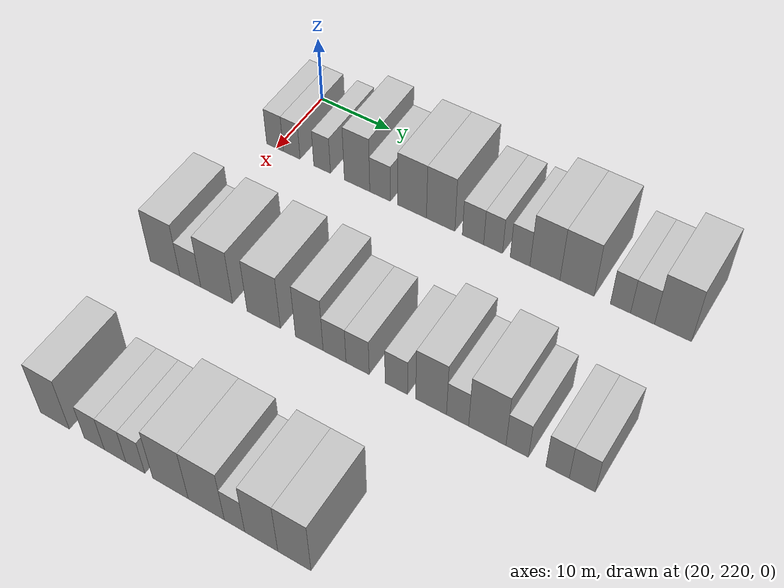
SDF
<sdf version="1.6">
 <world name="default">
  <model name="building_149">
   <static>1</static>
   <pose>25.0000 219.7441 0 0.000000 0.000000 0.000000</pose>
   <link name="link">
    <pose>0 0 3.00 0 0 0</pose>
    <collision name="collision"><geometry><box><size>10.0000 2.4757 6.0000</size></box></geometry></collision>
    <visual name="visual">
     <cast_shadows>0</cast_shadows>
     <geometry><box><size>10.0000 2.4757 6.0000</size></box></geometry>
     <material>
      <script>
       <uri>model://HANNAS_wall/materials/scripts</uri>
       <uri>model://HANNAS_wall/materials/textures</uri>
       <name>vrc/HANNAS_wall</name>
      </script>
     </material>
    </visual>
   </link>
  </model>
  <model name="building_150">
   <static>1</static>
   <pose>25.0000 222.2147 0 0.000000 0.000000 0.000000</pose>
   <link name="link">
    <pose>0 0 3.00 0 0 0</pose>
    <collision name="collision"><geometry><box><size>10.0000 2.4656 6.0000</size></box></geometry></collision>
    <visual name="visual">
     <cast_shadows>0</cast_shadows>
     <geometry><box><size>10.0000 2.4656 6.0000</size></box></geometry>
     <material>
      <script>
       <uri>model://HANNAS_wall/materials/scripts</uri>
       <uri>model://HANNAS_wall/materials/textures</uri>
       <name>vrc/HANNAS_wall</name>
      </script>
     </material>
    </visual>
   </link>
  </model>
  <model name="building_151">
   <static>1</static>
   <pose>25.0000 226.6536 0 0.000000 0.000000 0.000000</pose>
   <link name="link">
    <pose>0 0 3.00 0 0 0</pose>
    <collision name="collision"><geometry><box><size>10.0000 2.4122 6.0000</size></box></geometry></collision>
    <visual name="visual">
     <cast_shadows>0</cast_shadows>
     <geometry><box><size>10.0000 2.4122 6.0000</size></box></geometry>
     <material>
      <script>
       <uri>model://HANNAS_wall/materials/scripts</uri>
       <uri>model://HANNAS_wall/materials/textures</uri>
       <name>vrc/HANNAS_wall</name>
      </script>
     </material>
    </visual>
   </link>
  </model>
  <model name="building_152">
   <static>1</static>
   <pose>25.0000 231.6602 0 0.000000 0.000000 0.000000</pose>
   <link name="link">
    <pose>0 0 4.50 0 0 0</pose>
    <collision name="collision"><geometry><box><size>10.0000 3.6009 9.0000</size></box></geometry></collision>
    <visual name="visual">
     <cast_shadows>0</cast_shadows>
     <geometry><box><size>10.0000 3.6009 9.0000</size></box></geometry>
     <material>
      <script>
       <uri>model://HANNAS_wall/materials/scripts</uri>
       <uri>model://HANNAS_wall/materials/textures</uri>
       <name>vrc/HANNAS_wall</name>
      </script>
     </material>
    </visual>
   </link>
  </model>
  <model name="building_153">
   <static>1</static>
   <pose>25.0000 234.9099 0 0.000000 0.000000 0.000000</pose>
   <link name="link">
    <pose>0 0 3.00 0 0 0</pose>
    <collision name="collision"><geometry><box><size>10.0000 2.8985 6.0000</size></box></geometry></collision>
    <visual name="visual">
     <cast_shadows>0</cast_shadows>
     <geometry><box><size>10.0000 2.8985 6.0000</size></box></geometry>
     <material>
      <script>
       <uri>model://HANNAS_wall/materials/scripts</uri>
       <uri>model://HANNAS_wall/materials/textures</uri>
       <name>vrc/HANNAS_wall</name>
      </script>
     </material>
    </visual>
   </link>
  </model>
  <model name="building_154">
   <static>1</static>
   <pose>25.0000 239.3327 0 0.000000 0.000000 0.000000</pose>
   <link name="link">
    <pose>0 0 4.50 0 0 0</pose>
    <collision name="collision"><geometry><box><size>10.0000 3.9470 9.0000</size></box></geometry></collision>
    <visual name="visual">
     <cast_shadows>0</cast_shadows>
     <geometry><box><size>10.0000 3.9470 9.0000</size></box></geometry>
     <material>
      <script>
       <uri>model://HANNAS_wall/materials/scripts</uri>
       <uri>model://HANNAS_wall/materials/textures</uri>
       <name>vrc/HANNAS_wall</name>
      </script>
     </material>
    </visual>
   </link>
  </model>
  <model name="building_155">
   <static>1</static>
   <pose>25.0000 243.2332 0 0.000000 0.000000 0.000000</pose>
   <link name="link">
    <pose>0 0 4.50 0 0 0</pose>
    <collision name="collision"><geometry><box><size>10.0000 3.8540 9.0000</size></box></geometry></collision>
    <visual name="visual">
     <cast_shadows>0</cast_shadows>
     <geometry><box><size>10.0000 3.8540 9.0000</size></box></geometry>
     <material>
      <script>
       <uri>model://HANNAS_wall/materials/scripts</uri>
       <uri>model://HANNAS_wall/materials/textures</uri>
       <name>vrc/HANNAS_wall</name>
      </script>
     </material>
    </visual>
   </link>
  </model>
  <model name="building_156">
   <static>1</static>
   <pose>25.0000 247.5707 0 0.000000 0.000000 0.000000</pose>
   <link name="link">
    <pose>0 0 3.00 0 0 0</pose>
    <collision name="collision"><geometry><box><size>10.0000 2.8210 6.0000</size></box></geometry></collision>
    <visual name="visual">
     <cast_shadows>0</cast_shadows>
     <geometry><box><size>10.0000 2.8210 6.0000</size></box></geometry>
     <material>
      <script>
       <uri>model://HANNAS_wall/materials/scripts</uri>
       <uri>model://HANNAS_wall/materials/textures</uri>
       <name>vrc/HANNAS_wall</name>
      </script>
     </material>
    </visual>
   </link>
  </model>
  <model name="building_157">
   <static>1</static>
   <pose>25.0000 250.2225 0 0.000000 0.000000 0.000000</pose>
   <link name="link">
    <pose>0 0 3.00 0 0 0</pose>
    <collision name="collision"><geometry><box><size>10.0000 2.4826 6.0000</size></box></geometry></collision>
    <visual name="visual">
     <cast_shadows>0</cast_shadows>
     <geometry><box><size>10.0000 2.4826 6.0000</size></box></geometry>
     <material>
      <script>
       <uri>model://HANNAS_wall/materials/scripts</uri>
       <uri>model://HANNAS_wall/materials/textures</uri>
       <name>vrc/HANNAS_wall</name>
      </script>
     </material>
    </visual>
   </link>
  </model>
  <model name="building_158">
   <static>1</static>
   <pose>25.0000 253.7371 0 0.000000 0.000000 0.000000</pose>
   <link name="link">
    <pose>0 0 3.00 0 0 0</pose>
    <collision name="collision"><geometry><box><size>10.0000 2.5468 6.0000</size></box></geometry></collision>
    <visual name="visual">
     <cast_shadows>0</cast_shadows>
     <geometry><box><size>10.0000 2.5468 6.0000</size></box></geometry>
     <material>
      <script>
       <uri>model://HANNAS_wall/materials/scripts</uri>
       <uri>model://HANNAS_wall/materials/textures</uri>
       <name>vrc/HANNAS_wall</name>
      </script>
     </material>
    </visual>
   </link>
  </model>
  <model name="building_159">
   <static>1</static>
   <pose>25.0000 256.9259 0 0.000000 0.000000 0.000000</pose>
   <link name="link">
    <pose>0 0 4.50 0 0 0</pose>
    <collision name="collision"><geometry><box><size>10.0000 3.8307 9.0000</size></box></geometry></collision>
    <visual name="visual">
     <cast_shadows>0</cast_shadows>
     <geometry><box><size>10.0000 3.8307 9.0000</size></box></geometry>
     <material>
      <script>
       <uri>model://HANNAS_wall/materials/scripts</uri>
       <uri>model://HANNAS_wall/materials/textures</uri>
       <name>vrc/HANNAS_wall</name>
      </script>
     </material>
    </visual>
   </link>
  </model>
  <model name="building_160">
   <static>1</static>
   <pose>25.0000 260.9900 0 0.000000 0.000000 0.000000</pose>
   <link name="link">
    <pose>0 0 4.50 0 0 0</pose>
    <collision name="collision"><geometry><box><size>10.0000 4.2975 9.0000</size></box></geometry></collision>
    <visual name="visual">
     <cast_shadows>0</cast_shadows>
     <geometry><box><size>10.0000 4.2975 9.0000</size></box></geometry>
     <material>
      <script>
       <uri>model://HANNAS_wall/materials/scripts</uri>
       <uri>model://HANNAS_wall/materials/textures</uri>
       <name>vrc/HANNAS_wall</name>
      </script>
     </material>
    </visual>
   </link>
  </model>
  <model name="building_161">
   <static>1</static>
   <pose>25.0000 266.3770 0 0.000000 0.000000 0.000000</pose>
   <link name="link">
    <pose>0 0 3.00 0 0 0</pose>
    <collision name="collision"><geometry><box><size>10.0000 2.4764 6.0000</size></box></geometry></collision>
    <visual name="visual">
     <cast_shadows>0</cast_shadows>
     <geometry><box><size>10.0000 2.4764 6.0000</size></box></geometry>
     <material>
      <script>
       <uri>model://HANNAS_wall/materials/scripts</uri>
       <uri>model://HANNAS_wall/materials/textures</uri>
       <name>vrc/HANNAS_wall</name>
      </script>
     </material>
    </visual>
   </link>
  </model>
  <model name="building_162">
   <static>1</static>
   <pose>25.0000 269.0627 0 0.000000 0.000000 0.000000</pose>
   <link name="link">
    <pose>0 0 3.00 0 0 0</pose>
    <collision name="collision"><geometry><box><size>10.0000 2.8949 6.0000</size></box></geometry></collision>
    <visual name="visual">
     <cast_shadows>0</cast_shadows>
     <geometry><box><size>10.0000 2.8949 6.0000</size></box></geometry>
     <material>
      <script>
       <uri>model://HANNAS_wall/materials/scripts</uri>
       <uri>model://HANNAS_wall/materials/textures</uri>
       <name>vrc/HANNAS_wall</name>
      </script>
     </material>
    </visual>
   </link>
  </model>
  <model name="building_163">
   <static>1</static>
   <pose>25.0000 272.7180 0 0.000000 0.000000 0.000000</pose>
   <link name="link">
    <pose>0 0 4.50 0 0 0</pose>
    <collision name="collision"><geometry><box><size>10.0000 4.4158 9.0000</size></box></geometry></collision>
    <visual name="visual">
     <cast_shadows>0</cast_shadows>
     <geometry><box><size>10.0000 4.4158 9.0000</size></box></geometry>
     <material>
      <script>
       <uri>model://HANNAS_wall/materials/scripts</uri>
       <uri>model://HANNAS_wall/materials/textures</uri>
       <name>vrc/HANNAS_wall</name>
      </script>
     </material>
    </visual>
   </link>
  </model>
  <model name="building_348">
   <static>1</static>
   <pose>47.0000 219.8386 0 0.000000 0.000000 0.000000</pose>
   <link name="link">
    <pose>0 0 4.50 0 0 0</pose>
    <collision name="collision"><geometry><box><size>10.0000 4.2319 9.0000</size></box></geometry></collision>
    <visual name="visual">
     <cast_shadows>0</cast_shadows>
     <geometry><box><size>10.0000 4.2319 9.0000</size></box></geometry>
     <material>
      <script>
       <uri>model://HANNAS_wall/materials/scripts</uri>
       <uri>model://HANNAS_wall/materials/textures</uri>
       <name>vrc/HANNAS_wall</name>
      </script>
     </material>
    </visual>
   </link>
  </model>
  <model name="building_349">
   <static>1</static>
   <pose>47.0000 223.4255 0 0.000000 0.000000 0.000000</pose>
   <link name="link">
    <pose>0 0 3.00 0 0 0</pose>
    <collision name="collision"><geometry><box><size>10.0000 2.9419 6.0000</size></box></geometry></collision>
    <visual name="visual">
     <cast_shadows>0</cast_shadows>
     <geometry><box><size>10.0000 2.9419 6.0000</size></box></geometry>
     <material>
      <script>
       <uri>model://HANNAS_wall/materials/scripts</uri>
       <uri>model://HANNAS_wall/materials/textures</uri>
       <name>vrc/HANNAS_wall</name>
      </script>
     </material>
    </visual>
   </link>
  </model>
  <model name="building_350">
   <static>1</static>
   <pose>47.0000 227.0939 0 0.000000 0.000000 0.000000</pose>
   <link name="link">
    <pose>0 0 4.50 0 0 0</pose>
    <collision name="collision"><geometry><box><size>10.0000 4.3949 9.0000</size></box></geometry></collision>
    <visual name="visual">
     <cast_shadows>0</cast_shadows>
     <geometry><box><size>10.0000 4.3949 9.0000</size></box></geometry>
     <material>
      <script>
       <uri>model://HANNAS_wall/materials/scripts</uri>
       <uri>model://HANNAS_wall/materials/textures</uri>
       <name>vrc/HANNAS_wall</name>
      </script>
     </material>
    </visual>
   </link>
  </model>
  <model name="building_351">
   <static>1</static>
   <pose>47.0000 233.5297 0 0.000000 0.000000 0.000000</pose>
   <link name="link">
    <pose>0 0 4.50 0 0 0</pose>
    <collision name="collision"><geometry><box><size>10.0000 4.4767 9.0000</size></box></geometry></collision>
    <visual name="visual">
     <cast_shadows>0</cast_shadows>
     <geometry><box><size>10.0000 4.4767 9.0000</size></box></geometry>
     <material>
      <script>
       <uri>model://HANNAS_wall/materials/scripts</uri>
       <uri>model://HANNAS_wall/materials/textures</uri>
       <name>vrc/HANNAS_wall</name>
      </script>
     </material>
    </visual>
   </link>
  </model>
  <model name="building_352">
   <static>1</static>
   <pose>47.0000 239.5774 0 0.000000 0.000000 0.000000</pose>
   <link name="link">
    <pose>0 0 4.50 0 0 0</pose>
    <collision name="collision"><geometry><box><size>10.0000 3.6187 9.0000</size></box></geometry></collision>
    <visual name="visual">
     <cast_shadows>0</cast_shadows>
     <geometry><box><size>10.0000 3.6187 9.0000</size></box></geometry>
     <material>
      <script>
       <uri>model://HANNAS_wall/materials/scripts</uri>
       <uri>model://HANNAS_wall/materials/textures</uri>
       <name>vrc/HANNAS_wall</name>
      </script>
     </material>
    </visual>
   </link>
  </model>
  <model name="building_353">
   <static>1</static>
   <pose>47.0000 242.8636 0 0.000000 0.000000 0.000000</pose>
   <link name="link">
    <pose>0 0 3.00 0 0 0</pose>
    <collision name="collision"><geometry><box><size>10.0000 2.9537 6.0000</size></box></geometry></collision>
    <visual name="visual">
     <cast_shadows>0</cast_shadows>
     <geometry><box><size>10.0000 2.9537 6.0000</size></box></geometry>
     <material>
      <script>
       <uri>model://HANNAS_wall/materials/scripts</uri>
       <uri>model://HANNAS_wall/materials/textures</uri>
       <name>vrc/HANNAS_wall</name>
      </script>
     </material>
    </visual>
   </link>
  </model>
  <model name="building_354">
   <static>1</static>
   <pose>47.0000 245.8181 0 0.000000 0.000000 0.000000</pose>
   <link name="link">
    <pose>0 0 3.00 0 0 0</pose>
    <collision name="collision"><geometry><box><size>10.0000 2.9555 6.0000</size></box></geometry></collision>
    <visual name="visual">
     <cast_shadows>0</cast_shadows>
     <geometry><box><size>10.0000 2.9555 6.0000</size></box></geometry>
     <material>
      <script>
       <uri>model://HANNAS_wall/materials/scripts</uri>
       <uri>model://HANNAS_wall/materials/textures</uri>
       <name>vrc/HANNAS_wall</name>
      </script>
     </material>
    </visual>
   </link>
  </model>
  <model name="building_355">
   <static>1</static>
   <pose>47.0000 250.6906 0 0.000000 0.000000 0.000000</pose>
   <link name="link">
    <pose>0 0 3.00 0 0 0</pose>
    <collision name="collision"><geometry><box><size>10.0000 2.7893 6.0000</size></box></geometry></collision>
    <visual name="visual">
     <cast_shadows>0</cast_shadows>
     <geometry><box><size>10.0000 2.7893 6.0000</size></box></geometry>
     <material>
      <script>
       <uri>model://HANNAS_wall/materials/scripts</uri>
       <uri>model://HANNAS_wall/materials/textures</uri>
       <name>vrc/HANNAS_wall</name>
      </script>
     </material>
    </visual>
   </link>
  </model>
  <model name="building_356">
   <static>1</static>
   <pose>47.0000 254.9683 0 0.000000 0.000000 0.000000</pose>
   <link name="link">
    <pose>0 0 4.50 0 0 0</pose>
    <collision name="collision"><geometry><box><size>10.0000 3.7663 9.0000</size></box></geometry></collision>
    <visual name="visual">
     <cast_shadows>0</cast_shadows>
     <geometry><box><size>10.0000 3.7663 9.0000</size></box></geometry>
     <material>
      <script>
       <uri>model://HANNAS_wall/materials/scripts</uri>
       <uri>model://HANNAS_wall/materials/textures</uri>
       <name>vrc/HANNAS_wall</name>
      </script>
     </material>
    </visual>
   </link>
  </model>
  <model name="building_357">
   <static>1</static>
   <pose>47.0000 258.1825 0 0.000000 0.000000 0.000000</pose>
   <link name="link">
    <pose>0 0 3.00 0 0 0</pose>
    <collision name="collision"><geometry><box><size>10.0000 2.6620 6.0000</size></box></geometry></collision>
    <visual name="visual">
     <cast_shadows>0</cast_shadows>
     <geometry><box><size>10.0000 2.6620 6.0000</size></box></geometry>
     <material>
      <script>
       <uri>model://HANNAS_wall/materials/scripts</uri>
       <uri>model://HANNAS_wall/materials/textures</uri>
       <name>vrc/HANNAS_wall</name>
      </script>
     </material>
    </visual>
   </link>
  </model>
  <model name="building_358">
   <static>1</static>
   <pose>47.0000 261.7209 0 0.000000 0.000000 0.000000</pose>
   <link name="link">
    <pose>0 0 4.50 0 0 0</pose>
    <collision name="collision"><geometry><box><size>10.0000 4.4149 9.0000</size></box></geometry></collision>
    <visual name="visual">
     <cast_shadows>0</cast_shadows>
     <geometry><box><size>10.0000 4.4149 9.0000</size></box></geometry>
     <material>
      <script>
       <uri>model://HANNAS_wall/materials/scripts</uri>
       <uri>model://HANNAS_wall/materials/textures</uri>
       <name>vrc/HANNAS_wall</name>
      </script>
     </material>
    </visual>
   </link>
  </model>
  <model name="building_359">
   <static>1</static>
   <pose>47.0000 265.2406 0 0.000000 0.000000 0.000000</pose>
   <link name="link">
    <pose>0 0 3.00 0 0 0</pose>
    <collision name="collision"><geometry><box><size>10.0000 2.6245 6.0000</size></box></geometry></collision>
    <visual name="visual">
     <cast_shadows>0</cast_shadows>
     <geometry><box><size>10.0000 2.6245 6.0000</size></box></geometry>
     <material>
      <script>
       <uri>model://HANNAS_wall/materials/scripts</uri>
       <uri>model://HANNAS_wall/materials/textures</uri>
       <name>vrc/HANNAS_wall</name>
      </script>
     </material>
    </visual>
   </link>
  </model>
  <model name="building_360">
   <static>1</static>
   <pose>47.0000 269.8817 0 0.000000 0.000000 0.000000</pose>
   <link name="link">
    <pose>0 0 3.00 0 0 0</pose>
    <collision name="collision"><geometry><box><size>10.0000 2.6579 6.0000</size></box></geometry></collision>
    <visual name="visual">
     <cast_shadows>0</cast_shadows>
     <geometry><box><size>10.0000 2.6579 6.0000</size></box></geometry>
     <material>
      <script>
       <uri>model://HANNAS_wall/materials/scripts</uri>
       <uri>model://HANNAS_wall/materials/textures</uri>
       <name>vrc/HANNAS_wall</name>
      </script>
     </material>
    </visual>
   </link>
  </model>
  <model name="building_361">
   <static>1</static>
   <pose>47.0000 272.6764 0 0.000000 0.000000 0.000000</pose>
   <link name="link">
    <pose>0 0 3.00 0 0 0</pose>
    <collision name="collision"><geometry><box><size>10.0000 2.9316 6.0000</size></box></geometry></collision>
    <visual name="visual">
     <cast_shadows>0</cast_shadows>
     <geometry><box><size>10.0000 2.9316 6.0000</size></box></geometry>
     <material>
      <script>
       <uri>model://HANNAS_wall/materials/scripts</uri>
       <uri>model://HANNAS_wall/materials/textures</uri>
       <name>vrc/HANNAS_wall</name>
      </script>
     </material>
    </visual>
   </link>
  </model>
  <model name="building_524">
   <static>1</static>
   <pose>69.0000 222.4576 0 0.000000 0.000000 0.000000</pose>
   <link name="link">
    <pose>0 0 4.50 0 0 0</pose>
    <collision name="collision"><geometry><box><size>10.0000 3.9018 9.0000</size></box></geometry></collision>
    <visual name="visual">
     <cast_shadows>0</cast_shadows>
     <geometry><box><size>10.0000 3.9018 9.0000</size></box></geometry>
     <material>
      <script>
       <uri>model://HANNAS_wall/materials/scripts</uri>
       <uri>model://HANNAS_wall/materials/textures</uri>
       <name>vrc/HANNAS_wall</name>
      </script>
     </material>
    </visual>
   </link>
  </model>
  <model name="building_525">
   <static>1</static>
   <pose>69.0000 227.7346 0 0.000000 0.000000 0.000000</pose>
   <link name="link">
    <pose>0 0 3.00 0 0 0</pose>
    <collision name="collision"><geometry><box><size>10.0000 2.6521 6.0000</size></box></geometry></collision>
    <visual name="visual">
     <cast_shadows>0</cast_shadows>
     <geometry><box><size>10.0000 2.6521 6.0000</size></box></geometry>
     <material>
      <script>
       <uri>model://HANNAS_wall/materials/scripts</uri>
       <uri>model://HANNAS_wall/materials/textures</uri>
       <name>vrc/HANNAS_wall</name>
      </script>
     </material>
    </visual>
   </link>
  </model>
  <model name="building_526">
   <static>1</static>
   <pose>69.0000 230.4760 0 0.000000 0.000000 0.000000</pose>
   <link name="link">
    <pose>0 0 3.00 0 0 0</pose>
    <collision name="collision"><geometry><box><size>10.0000 2.8308 6.0000</size></box></geometry></collision>
    <visual name="visual">
     <cast_shadows>0</cast_shadows>
     <geometry><box><size>10.0000 2.8308 6.0000</size></box></geometry>
     <material>
      <script>
       <uri>model://HANNAS_wall/materials/scripts</uri>
       <uri>model://HANNAS_wall/materials/textures</uri>
       <name>vrc/HANNAS_wall</name>
      </script>
     </material>
    </visual>
   </link>
  </model>
  <model name="building_527">
   <static>1</static>
   <pose>69.0000 233.1092 0 0.000000 0.000000 0.000000</pose>
   <link name="link">
    <pose>0 0 3.00 0 0 0</pose>
    <collision name="collision"><geometry><box><size>10.0000 2.4355 6.0000</size></box></geometry></collision>
    <visual name="visual">
     <cast_shadows>0</cast_shadows>
     <geometry><box><size>10.0000 2.4355 6.0000</size></box></geometry>
     <material>
      <script>
       <uri>model://HANNAS_wall/materials/scripts</uri>
       <uri>model://HANNAS_wall/materials/textures</uri>
       <name>vrc/HANNAS_wall</name>
      </script>
     </material>
    </visual>
   </link>
  </model>
  <model name="building_528">
   <static>1</static>
   <pose>69.0000 237.5734 0 0.000000 0.000000 0.000000</pose>
   <link name="link">
    <pose>0 0 4.50 0 0 0</pose>
    <collision name="collision"><geometry><box><size>10.0000 4.4930 9.0000</size></box></geometry></collision>
    <visual name="visual">
     <cast_shadows>0</cast_shadows>
     <geometry><box><size>10.0000 4.4930 9.0000</size></box></geometry>
     <material>
      <script>
       <uri>model://HANNAS_wall/materials/scripts</uri>
       <uri>model://HANNAS_wall/materials/textures</uri>
       <name>vrc/HANNAS_wall</name>
      </script>
     </material>
    </visual>
   </link>
  </model>
  <model name="building_529">
   <static>1</static>
   <pose>69.0000 242.0423 0 0.000000 0.000000 0.000000</pose>
   <link name="link">
    <pose>0 0 4.50 0 0 0</pose>
    <collision name="collision"><geometry><box><size>10.0000 4.4447 9.0000</size></box></geometry></collision>
    <visual name="visual">
     <cast_shadows>0</cast_shadows>
     <geometry><box><size>10.0000 4.4447 9.0000</size></box></geometry>
     <material>
      <script>
       <uri>model://HANNAS_wall/materials/scripts</uri>
       <uri>model://HANNAS_wall/materials/textures</uri>
       <name>vrc/HANNAS_wall</name>
      </script>
     </material>
    </visual>
   </link>
  </model>
  <model name="building_530">
   <static>1</static>
   <pose>69.0000 245.5033 0 0.000000 0.000000 0.000000</pose>
   <link name="link">
    <pose>0 0 3.00 0 0 0</pose>
    <collision name="collision"><geometry><box><size>10.0000 2.4772 6.0000</size></box></geometry></collision>
    <visual name="visual">
     <cast_shadows>0</cast_shadows>
     <geometry><box><size>10.0000 2.4772 6.0000</size></box></geometry>
     <material>
      <script>
       <uri>model://HANNAS_wall/materials/scripts</uri>
       <uri>model://HANNAS_wall/materials/textures</uri>
       <name>vrc/HANNAS_wall</name>
      </script>
     </material>
    </visual>
   </link>
  </model>
  <model name="building_531">
   <static>1</static>
   <pose>69.0000 248.7186 0 0.000000 0.000000 0.000000</pose>
   <link name="link">
    <pose>0 0 4.50 0 0 0</pose>
    <collision name="collision"><geometry><box><size>10.0000 3.9534 9.0000</size></box></geometry></collision>
    <visual name="visual">
     <cast_shadows>0</cast_shadows>
     <geometry><box><size>10.0000 3.9534 9.0000</size></box></geometry>
     <material>
      <script>
       <uri>model://HANNAS_wall/materials/scripts</uri>
       <uri>model://HANNAS_wall/materials/textures</uri>
       <name>vrc/HANNAS_wall</name>
      </script>
     </material>
    </visual>
   </link>
  </model>
  <model name="building_532">
   <static>1</static>
   <pose>69.0000 252.6382 0 0.000000 0.000000 0.000000</pose>
   <link name="link">
    <pose>0 0 4.50 0 0 0</pose>
    <collision name="collision"><geometry><box><size>10.0000 3.8860 9.0000</size></box></geometry></collision>
    <visual name="visual">
     <cast_shadows>0</cast_shadows>
     <geometry><box><size>10.0000 3.8860 9.0000</size></box></geometry>
     <material>
      <script>
       <uri>model://HANNAS_wall/materials/scripts</uri>
       <uri>model://HANNAS_wall/materials/textures</uri>
       <name>vrc/HANNAS_wall</name>
      </script>
     </material>
    </visual>
   </link>
  </model>
 </world>
</sdf>
